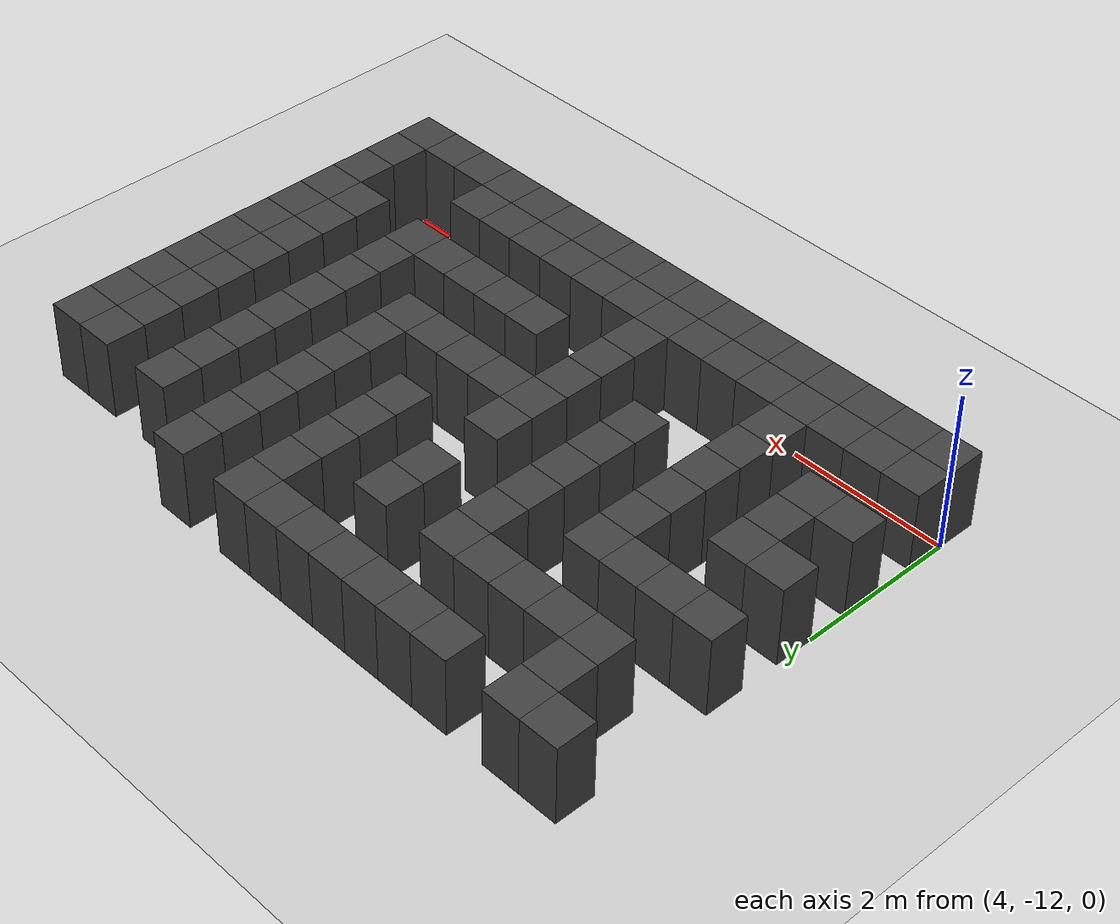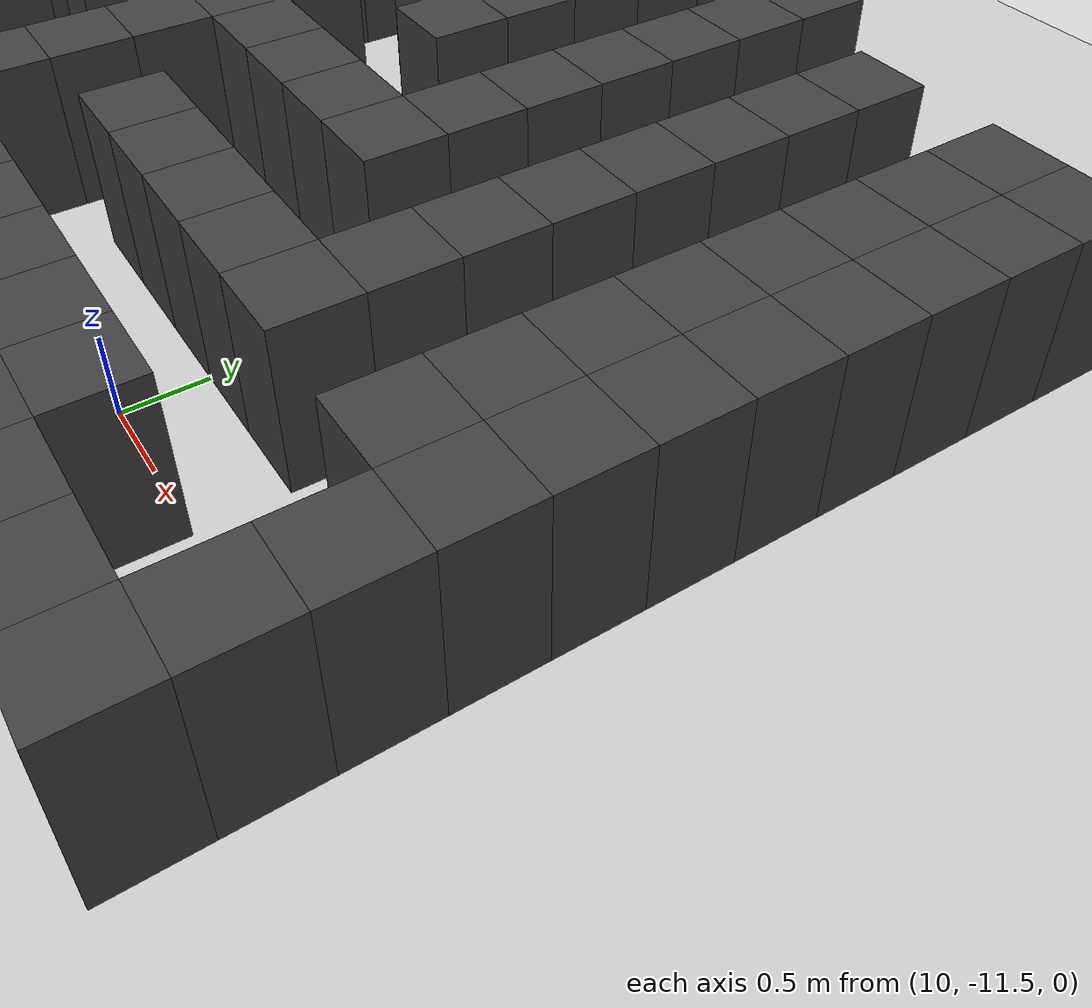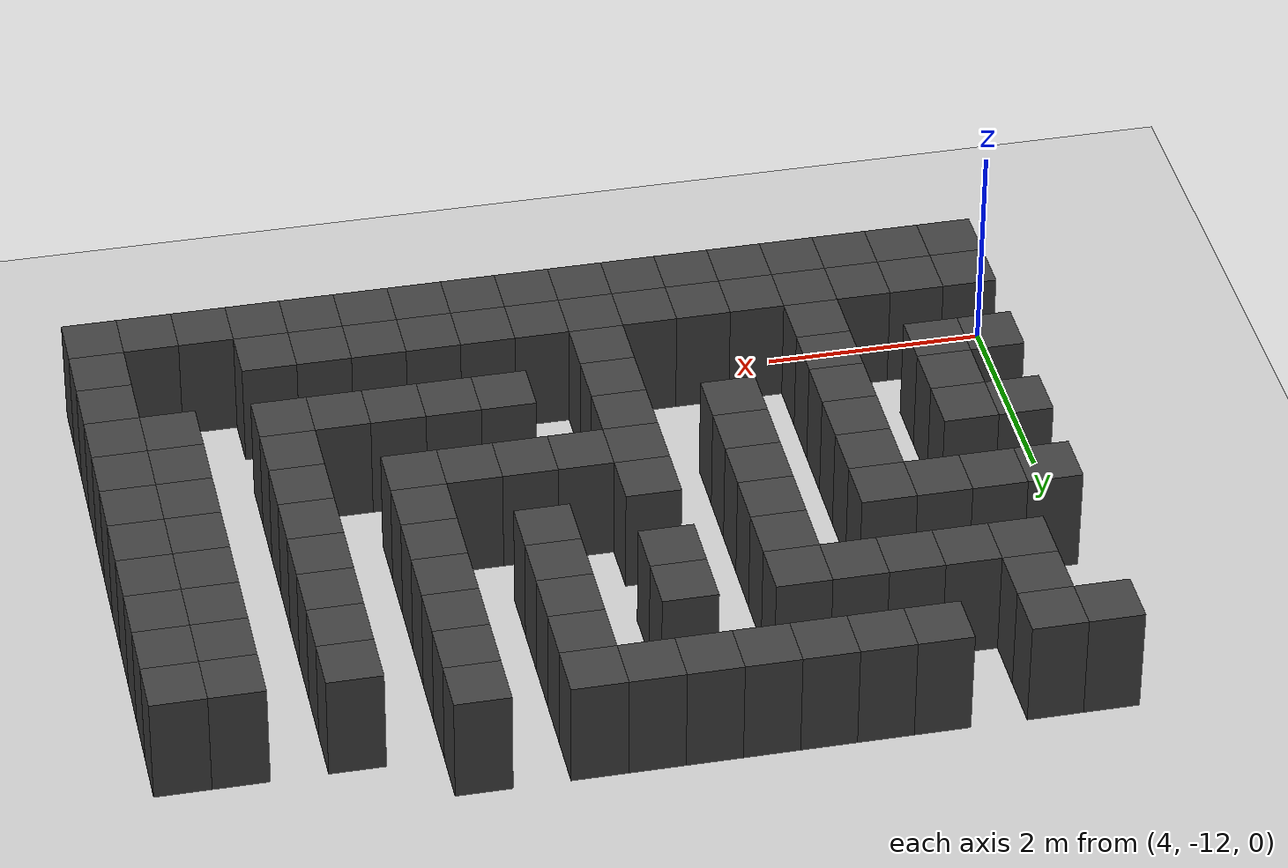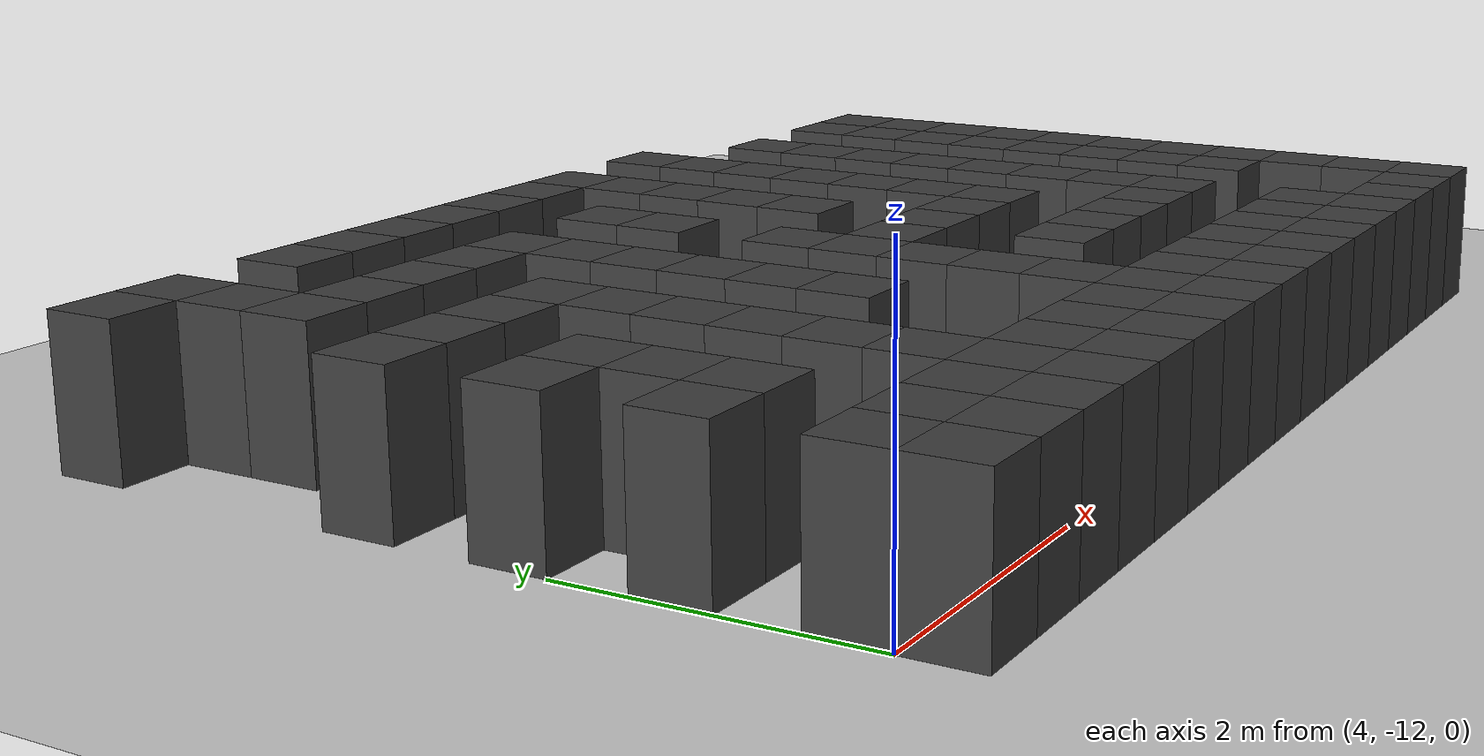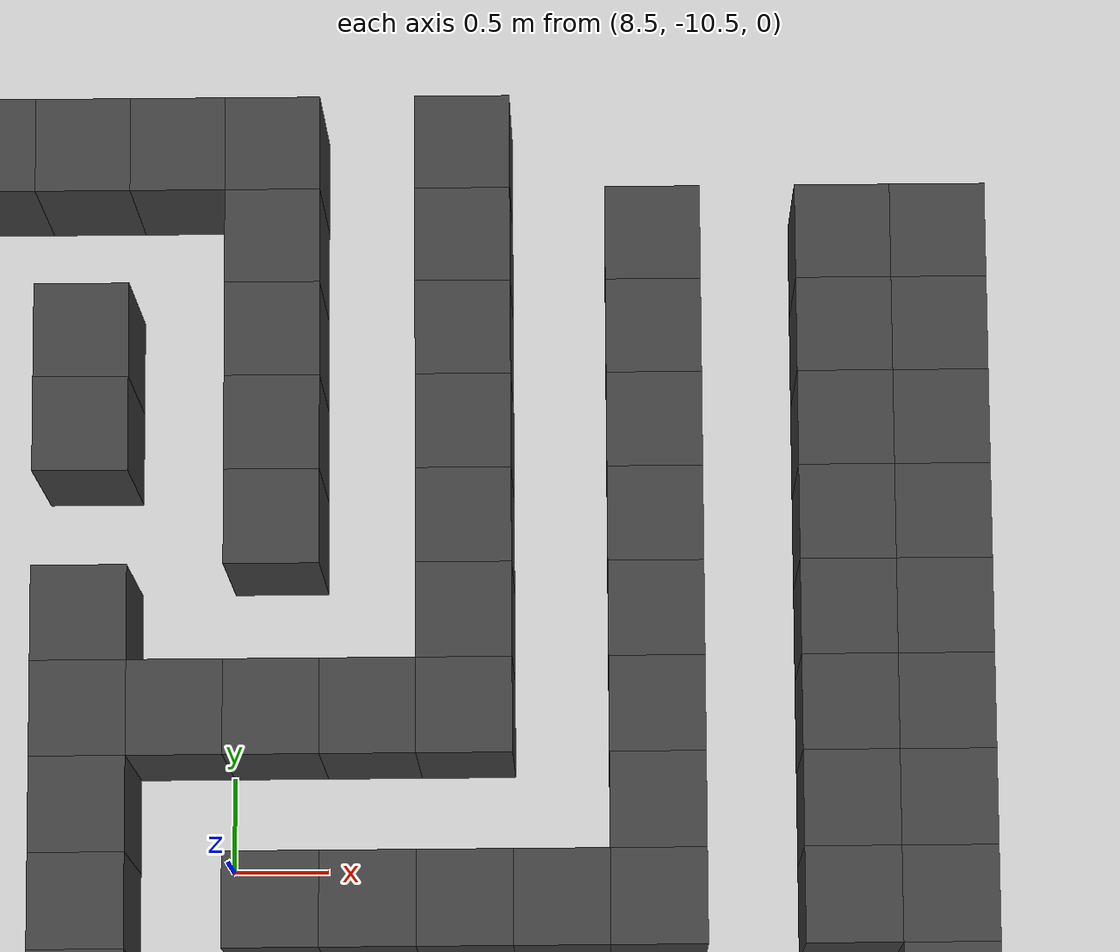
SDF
<sdf version="1.7">
 <world name="map_18228">
  <model name="ground_plane">
   <static>true</static>
   <link name="link">
    <collision name="collision">
     <geometry><plane><normal>0 0 1</normal><size>200 200</size></plane></geometry>
    </collision>
    <visual name="visual">
     <geometry><plane><normal>0 0 1</normal><size>200 200</size></plane></geometry>
     <material><ambient>0.8 0.8 0.8 1</ambient><diffuse>0.8 0.8 0.8 1</diffuse></material>
    </visual>
   </link>
  </model>
  <model name="maze_environment">
   <static>true</static>
   <link name="wall_970">
    <pose>4.250 -6.750 0.500 0 0 0</pose>
    <collision name="col"><geometry><box><size>0.5 0.5 1.0</size></box></geometry></collision>
    <visual name="vis">
     <geometry><box><size>0.5 0.5 1.0</size></box></geometry>
     <material><ambient>0.15 0.15 0.15 1</ambient><diffuse>0.25 0.25 0.25 1</diffuse></material>
    </visual>
   </link>
   <link name="wall_971">
    <pose>4.750 -6.750 0.500 0 0 0</pose>
    <collision name="col"><geometry><box><size>0.5 0.5 1.0</size></box></geometry></collision>
    <visual name="vis">
     <geometry><box><size>0.5 0.5 1.0</size></box></geometry>
     <material><ambient>0.15 0.15 0.15 1</ambient><diffuse>0.25 0.25 0.25 1</diffuse></material>
    </visual>
   </link>
   <link name="wall_972">
    <pose>5.750 -6.750 0.500 0 0 0</pose>
    <collision name="col"><geometry><box><size>0.5 0.5 1.0</size></box></geometry></collision>
    <visual name="vis">
     <geometry><box><size>0.5 0.5 1.0</size></box></geometry>
     <material><ambient>0.15 0.15 0.15 1</ambient><diffuse>0.25 0.25 0.25 1</diffuse></material>
    </visual>
   </link>
   <link name="wall_973">
    <pose>6.250 -6.750 0.500 0 0 0</pose>
    <collision name="col"><geometry><box><size>0.5 0.5 1.0</size></box></geometry></collision>
    <visual name="vis">
     <geometry><box><size>0.5 0.5 1.0</size></box></geometry>
     <material><ambient>0.15 0.15 0.15 1</ambient><diffuse>0.25 0.25 0.25 1</diffuse></material>
    </visual>
   </link>
   <link name="wall_974">
    <pose>6.750 -6.750 0.500 0 0 0</pose>
    <collision name="col"><geometry><box><size>0.5 0.5 1.0</size></box></geometry></collision>
    <visual name="vis">
     <geometry><box><size>0.5 0.5 1.0</size></box></geometry>
     <material><ambient>0.15 0.15 0.15 1</ambient><diffuse>0.25 0.25 0.25 1</diffuse></material>
    </visual>
   </link>
   <link name="wall_975">
    <pose>7.250 -6.750 0.500 0 0 0</pose>
    <collision name="col"><geometry><box><size>0.5 0.5 1.0</size></box></geometry></collision>
    <visual name="vis">
     <geometry><box><size>0.5 0.5 1.0</size></box></geometry>
     <material><ambient>0.15 0.15 0.15 1</ambient><diffuse>0.25 0.25 0.25 1</diffuse></material>
    </visual>
   </link>
   <link name="wall_976">
    <pose>7.750 -6.750 0.500 0 0 0</pose>
    <collision name="col"><geometry><box><size>0.5 0.5 1.0</size></box></geometry></collision>
    <visual name="vis">
     <geometry><box><size>0.5 0.5 1.0</size></box></geometry>
     <material><ambient>0.15 0.15 0.15 1</ambient><diffuse>0.25 0.25 0.25 1</diffuse></material>
    </visual>
   </link>
   <link name="wall_977">
    <pose>8.250 -6.750 0.500 0 0 0</pose>
    <collision name="col"><geometry><box><size>0.5 0.5 1.0</size></box></geometry></collision>
    <visual name="vis">
     <geometry><box><size>0.5 0.5 1.0</size></box></geometry>
     <material><ambient>0.15 0.15 0.15 1</ambient><diffuse>0.25 0.25 0.25 1</diffuse></material>
    </visual>
   </link>
   <link name="wall_978">
    <pose>8.750 -6.750 0.500 0 0 0</pose>
    <collision name="col"><geometry><box><size>0.5 0.5 1.0</size></box></geometry></collision>
    <visual name="vis">
     <geometry><box><size>0.5 0.5 1.0</size></box></geometry>
     <material><ambient>0.15 0.15 0.15 1</ambient><diffuse>0.25 0.25 0.25 1</diffuse></material>
    </visual>
   </link>
   <link name="wall_979">
    <pose>9.750 -6.750 0.500 0 0 0</pose>
    <collision name="col"><geometry><box><size>0.5 0.5 1.0</size></box></geometry></collision>
    <visual name="vis">
     <geometry><box><size>0.5 0.5 1.0</size></box></geometry>
     <material><ambient>0.15 0.15 0.15 1</ambient><diffuse>0.25 0.25 0.25 1</diffuse></material>
    </visual>
   </link>
   <link name="wall_990">
    <pose>4.750 -7.250 0.500 0 0 0</pose>
    <collision name="col"><geometry><box><size>0.5 0.5 1.0</size></box></geometry></collision>
    <visual name="vis">
     <geometry><box><size>0.5 0.5 1.0</size></box></geometry>
     <material><ambient>0.15 0.15 0.15 1</ambient><diffuse>0.25 0.25 0.25 1</diffuse></material>
    </visual>
   </link>
   <link name="wall_991">
    <pose>8.750 -7.250 0.500 0 0 0</pose>
    <collision name="col"><geometry><box><size>0.5 0.5 1.0</size></box></geometry></collision>
    <visual name="vis">
     <geometry><box><size>0.5 0.5 1.0</size></box></geometry>
     <material><ambient>0.15 0.15 0.15 1</ambient><diffuse>0.25 0.25 0.25 1</diffuse></material>
    </visual>
   </link>
   <link name="wall_992">
    <pose>9.750 -7.250 0.500 0 0 0</pose>
    <collision name="col"><geometry><box><size>0.5 0.5 1.0</size></box></geometry></collision>
    <visual name="vis">
     <geometry><box><size>0.5 0.5 1.0</size></box></geometry>
     <material><ambient>0.15 0.15 0.15 1</ambient><diffuse>0.25 0.25 0.25 1</diffuse></material>
    </visual>
   </link>
   <link name="wall_993">
    <pose>10.750 -7.250 0.500 0 0 0</pose>
    <collision name="col"><geometry><box><size>0.5 0.5 1.0</size></box></geometry></collision>
    <visual name="vis">
     <geometry><box><size>0.5 0.5 1.0</size></box></geometry>
     <material><ambient>0.15 0.15 0.15 1</ambient><diffuse>0.25 0.25 0.25 1</diffuse></material>
    </visual>
   </link>
   <link name="wall_994">
    <pose>11.750 -7.250 0.500 0 0 0</pose>
    <collision name="col"><geometry><box><size>0.5 0.5 1.0</size></box></geometry></collision>
    <visual name="vis">
     <geometry><box><size>0.5 0.5 1.0</size></box></geometry>
     <material><ambient>0.15 0.15 0.15 1</ambient><diffuse>0.25 0.25 0.25 1</diffuse></material>
    </visual>
   </link>
   <link name="wall_995">
    <pose>12.250 -7.250 0.500 0 0 0</pose>
    <collision name="col"><geometry><box><size>0.5 0.5 1.0</size></box></geometry></collision>
    <visual name="vis">
     <geometry><box><size>0.5 0.5 1.0</size></box></geometry>
     <material><ambient>0.15 0.15 0.15 1</ambient><diffuse>0.25 0.25 0.25 1</diffuse></material>
    </visual>
   </link>
   <link name="wall_1023">
    <pose>4.750 -7.750 0.500 0 0 0</pose>
    <collision name="col"><geometry><box><size>0.5 0.5 1.0</size></box></geometry></collision>
    <visual name="vis">
     <geometry><box><size>0.5 0.5 1.0</size></box></geometry>
     <material><ambient>0.15 0.15 0.15 1</ambient><diffuse>0.25 0.25 0.25 1</diffuse></material>
    </visual>
   </link>
   <link name="wall_1024">
    <pose>5.250 -7.750 0.500 0 0 0</pose>
    <collision name="col"><geometry><box><size>0.5 0.5 1.0</size></box></geometry></collision>
    <visual name="vis">
     <geometry><box><size>0.5 0.5 1.0</size></box></geometry>
     <material><ambient>0.15 0.15 0.15 1</ambient><diffuse>0.25 0.25 0.25 1</diffuse></material>
    </visual>
   </link>
   <link name="wall_1025">
    <pose>5.750 -7.750 0.500 0 0 0</pose>
    <collision name="col"><geometry><box><size>0.5 0.5 1.0</size></box></geometry></collision>
    <visual name="vis">
     <geometry><box><size>0.5 0.5 1.0</size></box></geometry>
     <material><ambient>0.15 0.15 0.15 1</ambient><diffuse>0.25 0.25 0.25 1</diffuse></material>
    </visual>
   </link>
   <link name="wall_1026">
    <pose>6.250 -7.750 0.500 0 0 0</pose>
    <collision name="col"><geometry><box><size>0.5 0.5 1.0</size></box></geometry></collision>
    <visual name="vis">
     <geometry><box><size>0.5 0.5 1.0</size></box></geometry>
     <material><ambient>0.15 0.15 0.15 1</ambient><diffuse>0.25 0.25 0.25 1</diffuse></material>
    </visual>
   </link>
   <link name="wall_1027">
    <pose>6.750 -7.750 0.500 0 0 0</pose>
    <collision name="col"><geometry><box><size>0.5 0.5 1.0</size></box></geometry></collision>
    <visual name="vis">
     <geometry><box><size>0.5 0.5 1.0</size></box></geometry>
     <material><ambient>0.15 0.15 0.15 1</ambient><diffuse>0.25 0.25 0.25 1</diffuse></material>
    </visual>
   </link>
   <link name="wall_1028">
    <pose>7.750 -7.750 0.500 0 0 0</pose>
    <collision name="col"><geometry><box><size>0.5 0.5 1.0</size></box></geometry></collision>
    <visual name="vis">
     <geometry><box><size>0.5 0.5 1.0</size></box></geometry>
     <material><ambient>0.15 0.15 0.15 1</ambient><diffuse>0.25 0.25 0.25 1</diffuse></material>
    </visual>
   </link>
   <link name="wall_1029">
    <pose>8.750 -7.750 0.500 0 0 0</pose>
    <collision name="col"><geometry><box><size>0.5 0.5 1.0</size></box></geometry></collision>
    <visual name="vis">
     <geometry><box><size>0.5 0.5 1.0</size></box></geometry>
     <material><ambient>0.15 0.15 0.15 1</ambient><diffuse>0.25 0.25 0.25 1</diffuse></material>
    </visual>
   </link>
   <link name="wall_1030">
    <pose>9.750 -7.750 0.500 0 0 0</pose>
    <collision name="col"><geometry><box><size>0.5 0.5 1.0</size></box></geometry></collision>
    <visual name="vis">
     <geometry><box><size>0.5 0.5 1.0</size></box></geometry>
     <material><ambient>0.15 0.15 0.15 1</ambient><diffuse>0.25 0.25 0.25 1</diffuse></material>
    </visual>
   </link>
   <link name="wall_1031">
    <pose>10.750 -7.750 0.500 0 0 0</pose>
    <collision name="col"><geometry><box><size>0.5 0.5 1.0</size></box></geometry></collision>
    <visual name="vis">
     <geometry><box><size>0.5 0.5 1.0</size></box></geometry>
     <material><ambient>0.15 0.15 0.15 1</ambient><diffuse>0.25 0.25 0.25 1</diffuse></material>
    </visual>
   </link>
   <link name="wall_1032">
    <pose>11.750 -7.750 0.500 0 0 0</pose>
    <collision name="col"><geometry><box><size>0.5 0.5 1.0</size></box></geometry></collision>
    <visual name="vis">
     <geometry><box><size>0.5 0.5 1.0</size></box></geometry>
     <material><ambient>0.15 0.15 0.15 1</ambient><diffuse>0.25 0.25 0.25 1</diffuse></material>
    </visual>
   </link>
   <link name="wall_1033">
    <pose>12.250 -7.750 0.500 0 0 0</pose>
    <collision name="col"><geometry><box><size>0.5 0.5 1.0</size></box></geometry></collision>
    <visual name="vis">
     <geometry><box><size>0.5 0.5 1.0</size></box></geometry>
     <material><ambient>0.15 0.15 0.15 1</ambient><diffuse>0.25 0.25 0.25 1</diffuse></material>
    </visual>
   </link>
   <link name="wall_1042">
    <pose>6.750 -8.250 0.500 0 0 0</pose>
    <collision name="col"><geometry><box><size>0.5 0.5 1.0</size></box></geometry></collision>
    <visual name="vis">
     <geometry><box><size>0.5 0.5 1.0</size></box></geometry>
     <material><ambient>0.15 0.15 0.15 1</ambient><diffuse>0.25 0.25 0.25 1</diffuse></material>
    </visual>
   </link>
   <link name="wall_1043">
    <pose>7.750 -8.250 0.500 0 0 0</pose>
    <collision name="col"><geometry><box><size>0.5 0.5 1.0</size></box></geometry></collision>
    <visual name="vis">
     <geometry><box><size>0.5 0.5 1.0</size></box></geometry>
     <material><ambient>0.15 0.15 0.15 1</ambient><diffuse>0.25 0.25 0.25 1</diffuse></material>
    </visual>
   </link>
   <link name="wall_1044">
    <pose>8.750 -8.250 0.500 0 0 0</pose>
    <collision name="col"><geometry><box><size>0.5 0.5 1.0</size></box></geometry></collision>
    <visual name="vis">
     <geometry><box><size>0.5 0.5 1.0</size></box></geometry>
     <material><ambient>0.15 0.15 0.15 1</ambient><diffuse>0.25 0.25 0.25 1</diffuse></material>
    </visual>
   </link>
   <link name="wall_1045">
    <pose>9.750 -8.250 0.500 0 0 0</pose>
    <collision name="col"><geometry><box><size>0.5 0.5 1.0</size></box></geometry></collision>
    <visual name="vis">
     <geometry><box><size>0.5 0.5 1.0</size></box></geometry>
     <material><ambient>0.15 0.15 0.15 1</ambient><diffuse>0.25 0.25 0.25 1</diffuse></material>
    </visual>
   </link>
   <link name="wall_1046">
    <pose>10.750 -8.250 0.500 0 0 0</pose>
    <collision name="col"><geometry><box><size>0.5 0.5 1.0</size></box></geometry></collision>
    <visual name="vis">
     <geometry><box><size>0.5 0.5 1.0</size></box></geometry>
     <material><ambient>0.15 0.15 0.15 1</ambient><diffuse>0.25 0.25 0.25 1</diffuse></material>
    </visual>
   </link>
   <link name="wall_1047">
    <pose>11.750 -8.250 0.500 0 0 0</pose>
    <collision name="col"><geometry><box><size>0.5 0.5 1.0</size></box></geometry></collision>
    <visual name="vis">
     <geometry><box><size>0.5 0.5 1.0</size></box></geometry>
     <material><ambient>0.15 0.15 0.15 1</ambient><diffuse>0.25 0.25 0.25 1</diffuse></material>
    </visual>
   </link>
   <link name="wall_1048">
    <pose>12.250 -8.250 0.500 0 0 0</pose>
    <collision name="col"><geometry><box><size>0.5 0.5 1.0</size></box></geometry></collision>
    <visual name="vis">
     <geometry><box><size>0.5 0.5 1.0</size></box></geometry>
     <material><ambient>0.15 0.15 0.15 1</ambient><diffuse>0.25 0.25 0.25 1</diffuse></material>
    </visual>
   </link>
   <link name="wall_1072">
    <pose>4.250 -8.750 0.500 0 0 0</pose>
    <collision name="col"><geometry><box><size>0.5 0.5 1.0</size></box></geometry></collision>
    <visual name="vis">
     <geometry><box><size>0.5 0.5 1.0</size></box></geometry>
     <material><ambient>0.15 0.15 0.15 1</ambient><diffuse>0.25 0.25 0.25 1</diffuse></material>
    </visual>
   </link>
   <link name="wall_1073">
    <pose>4.750 -8.750 0.500 0 0 0</pose>
    <collision name="col"><geometry><box><size>0.5 0.5 1.0</size></box></geometry></collision>
    <visual name="vis">
     <geometry><box><size>0.5 0.5 1.0</size></box></geometry>
     <material><ambient>0.15 0.15 0.15 1</ambient><diffuse>0.25 0.25 0.25 1</diffuse></material>
    </visual>
   </link>
   <link name="wall_1074">
    <pose>5.250 -8.750 0.500 0 0 0</pose>
    <collision name="col"><geometry><box><size>0.5 0.5 1.0</size></box></geometry></collision>
    <visual name="vis">
     <geometry><box><size>0.5 0.5 1.0</size></box></geometry>
     <material><ambient>0.15 0.15 0.15 1</ambient><diffuse>0.25 0.25 0.25 1</diffuse></material>
    </visual>
   </link>
   <link name="wall_1075">
    <pose>5.750 -8.750 0.500 0 0 0</pose>
    <collision name="col"><geometry><box><size>0.5 0.5 1.0</size></box></geometry></collision>
    <visual name="vis">
     <geometry><box><size>0.5 0.5 1.0</size></box></geometry>
     <material><ambient>0.15 0.15 0.15 1</ambient><diffuse>0.25 0.25 0.25 1</diffuse></material>
    </visual>
   </link>
   <link name="wall_1076">
    <pose>6.750 -8.750 0.500 0 0 0</pose>
    <collision name="col"><geometry><box><size>0.5 0.5 1.0</size></box></geometry></collision>
    <visual name="vis">
     <geometry><box><size>0.5 0.5 1.0</size></box></geometry>
     <material><ambient>0.15 0.15 0.15 1</ambient><diffuse>0.25 0.25 0.25 1</diffuse></material>
    </visual>
   </link>
   <link name="wall_1077">
    <pose>8.750 -8.750 0.500 0 0 0</pose>
    <collision name="col"><geometry><box><size>0.5 0.5 1.0</size></box></geometry></collision>
    <visual name="vis">
     <geometry><box><size>0.5 0.5 1.0</size></box></geometry>
     <material><ambient>0.15 0.15 0.15 1</ambient><diffuse>0.25 0.25 0.25 1</diffuse></material>
    </visual>
   </link>
   <link name="wall_1078">
    <pose>9.750 -8.750 0.500 0 0 0</pose>
    <collision name="col"><geometry><box><size>0.5 0.5 1.0</size></box></geometry></collision>
    <visual name="vis">
     <geometry><box><size>0.5 0.5 1.0</size></box></geometry>
     <material><ambient>0.15 0.15 0.15 1</ambient><diffuse>0.25 0.25 0.25 1</diffuse></material>
    </visual>
   </link>
   <link name="wall_1079">
    <pose>10.750 -8.750 0.500 0 0 0</pose>
    <collision name="col"><geometry><box><size>0.5 0.5 1.0</size></box></geometry></collision>
    <visual name="vis">
     <geometry><box><size>0.5 0.5 1.0</size></box></geometry>
     <material><ambient>0.15 0.15 0.15 1</ambient><diffuse>0.25 0.25 0.25 1</diffuse></material>
    </visual>
   </link>
   <link name="wall_1080">
    <pose>11.750 -8.750 0.500 0 0 0</pose>
    <collision name="col"><geometry><box><size>0.5 0.5 1.0</size></box></geometry></collision>
    <visual name="vis">
     <geometry><box><size>0.5 0.5 1.0</size></box></geometry>
     <material><ambient>0.15 0.15 0.15 1</ambient><diffuse>0.25 0.25 0.25 1</diffuse></material>
    </visual>
   </link>
   <link name="wall_1081">
    <pose>12.250 -8.750 0.500 0 0 0</pose>
    <collision name="col"><geometry><box><size>0.5 0.5 1.0</size></box></geometry></collision>
    <visual name="vis">
     <geometry><box><size>0.5 0.5 1.0</size></box></geometry>
     <material><ambient>0.15 0.15 0.15 1</ambient><diffuse>0.25 0.25 0.25 1</diffuse></material>
    </visual>
   </link>
   <link name="wall_1092">
    <pose>5.750 -9.250 0.500 0 0 0</pose>
    <collision name="col"><geometry><box><size>0.5 0.5 1.0</size></box></geometry></collision>
    <visual name="vis">
     <geometry><box><size>0.5 0.5 1.0</size></box></geometry>
     <material><ambient>0.15 0.15 0.15 1</ambient><diffuse>0.25 0.25 0.25 1</diffuse></material>
    </visual>
   </link>
   <link name="wall_1093">
    <pose>6.750 -9.250 0.500 0 0 0</pose>
    <collision name="col"><geometry><box><size>0.5 0.5 1.0</size></box></geometry></collision>
    <visual name="vis">
     <geometry><box><size>0.5 0.5 1.0</size></box></geometry>
     <material><ambient>0.15 0.15 0.15 1</ambient><diffuse>0.25 0.25 0.25 1</diffuse></material>
    </visual>
   </link>
   <link name="wall_1094">
    <pose>7.750 -9.250 0.500 0 0 0</pose>
    <collision name="col"><geometry><box><size>0.5 0.5 1.0</size></box></geometry></collision>
    <visual name="vis">
     <geometry><box><size>0.5 0.5 1.0</size></box></geometry>
     <material><ambient>0.15 0.15 0.15 1</ambient><diffuse>0.25 0.25 0.25 1</diffuse></material>
    </visual>
   </link>
   <link name="wall_1095">
    <pose>9.750 -9.250 0.500 0 0 0</pose>
    <collision name="col"><geometry><box><size>0.5 0.5 1.0</size></box></geometry></collision>
    <visual name="vis">
     <geometry><box><size>0.5 0.5 1.0</size></box></geometry>
     <material><ambient>0.15 0.15 0.15 1</ambient><diffuse>0.25 0.25 0.25 1</diffuse></material>
    </visual>
   </link>
   <link name="wall_1096">
    <pose>10.750 -9.250 0.500 0 0 0</pose>
    <collision name="col"><geometry><box><size>0.5 0.5 1.0</size></box></geometry></collision>
    <visual name="vis">
     <geometry><box><size>0.5 0.5 1.0</size></box></geometry>
     <material><ambient>0.15 0.15 0.15 1</ambient><diffuse>0.25 0.25 0.25 1</diffuse></material>
    </visual>
   </link>
   <link name="wall_1097">
    <pose>11.750 -9.250 0.500 0 0 0</pose>
    <collision name="col"><geometry><box><size>0.5 0.5 1.0</size></box></geometry></collision>
    <visual name="vis">
     <geometry><box><size>0.5 0.5 1.0</size></box></geometry>
     <material><ambient>0.15 0.15 0.15 1</ambient><diffuse>0.25 0.25 0.25 1</diffuse></material>
    </visual>
   </link>
   <link name="wall_1098">
    <pose>12.250 -9.250 0.500 0 0 0</pose>
    <collision name="col"><geometry><box><size>0.5 0.5 1.0</size></box></geometry></collision>
    <visual name="vis">
     <geometry><box><size>0.5 0.5 1.0</size></box></geometry>
     <material><ambient>0.15 0.15 0.15 1</ambient><diffuse>0.25 0.25 0.25 1</diffuse></material>
    </visual>
   </link>
   <link name="wall_1121">
    <pose>4.250 -9.750 0.500 0 0 0</pose>
    <collision name="col"><geometry><box><size>0.5 0.5 1.0</size></box></geometry></collision>
    <visual name="vis">
     <geometry><box><size>0.5 0.5 1.0</size></box></geometry>
     <material><ambient>0.15 0.15 0.15 1</ambient><diffuse>0.25 0.25 0.25 1</diffuse></material>
    </visual>
   </link>
   <link name="wall_1122">
    <pose>4.750 -9.750 0.500 0 0 0</pose>
    <collision name="col"><geometry><box><size>0.5 0.5 1.0</size></box></geometry></collision>
    <visual name="vis">
     <geometry><box><size>0.5 0.5 1.0</size></box></geometry>
     <material><ambient>0.15 0.15 0.15 1</ambient><diffuse>0.25 0.25 0.25 1</diffuse></material>
    </visual>
   </link>
   <link name="wall_1123">
    <pose>5.750 -9.750 0.500 0 0 0</pose>
    <collision name="col"><geometry><box><size>0.5 0.5 1.0</size></box></geometry></collision>
    <visual name="vis">
     <geometry><box><size>0.5 0.5 1.0</size></box></geometry>
     <material><ambient>0.15 0.15 0.15 1</ambient><diffuse>0.25 0.25 0.25 1</diffuse></material>
    </visual>
   </link>
   <link name="wall_1124">
    <pose>6.750 -9.750 0.500 0 0 0</pose>
    <collision name="col"><geometry><box><size>0.5 0.5 1.0</size></box></geometry></collision>
    <visual name="vis">
     <geometry><box><size>0.5 0.5 1.0</size></box></geometry>
     <material><ambient>0.15 0.15 0.15 1</ambient><diffuse>0.25 0.25 0.25 1</diffuse></material>
    </visual>
   </link>
   <link name="wall_1125">
    <pose>7.750 -9.750 0.500 0 0 0</pose>
    <collision name="col"><geometry><box><size>0.5 0.5 1.0</size></box></geometry></collision>
    <visual name="vis">
     <geometry><box><size>0.5 0.5 1.0</size></box></geometry>
     <material><ambient>0.15 0.15 0.15 1</ambient><diffuse>0.25 0.25 0.25 1</diffuse></material>
    </visual>
   </link>
   <link name="wall_1126">
    <pose>8.250 -9.750 0.500 0 0 0</pose>
    <collision name="col"><geometry><box><size>0.5 0.5 1.0</size></box></geometry></collision>
    <visual name="vis">
     <geometry><box><size>0.5 0.5 1.0</size></box></geometry>
     <material><ambient>0.15 0.15 0.15 1</ambient><diffuse>0.25 0.25 0.25 1</diffuse></material>
    </visual>
   </link>
   <link name="wall_1127">
    <pose>8.750 -9.750 0.500 0 0 0</pose>
    <collision name="col"><geometry><box><size>0.5 0.5 1.0</size></box></geometry></collision>
    <visual name="vis">
     <geometry><box><size>0.5 0.5 1.0</size></box></geometry>
     <material><ambient>0.15 0.15 0.15 1</ambient><diffuse>0.25 0.25 0.25 1</diffuse></material>
    </visual>
   </link>
   <link name="wall_1128">
    <pose>9.250 -9.750 0.500 0 0 0</pose>
    <collision name="col"><geometry><box><size>0.5 0.5 1.0</size></box></geometry></collision>
    <visual name="vis">
     <geometry><box><size>0.5 0.5 1.0</size></box></geometry>
     <material><ambient>0.15 0.15 0.15 1</ambient><diffuse>0.25 0.25 0.25 1</diffuse></material>
    </visual>
   </link>
   <link name="wall_1129">
    <pose>9.750 -9.750 0.500 0 0 0</pose>
    <collision name="col"><geometry><box><size>0.5 0.5 1.0</size></box></geometry></collision>
    <visual name="vis">
     <geometry><box><size>0.5 0.5 1.0</size></box></geometry>
     <material><ambient>0.15 0.15 0.15 1</ambient><diffuse>0.25 0.25 0.25 1</diffuse></material>
    </visual>
   </link>
   <link name="wall_1130">
    <pose>10.750 -9.750 0.500 0 0 0</pose>
    <collision name="col"><geometry><box><size>0.5 0.5 1.0</size></box></geometry></collision>
    <visual name="vis">
     <geometry><box><size>0.5 0.5 1.0</size></box></geometry>
     <material><ambient>0.15 0.15 0.15 1</ambient><diffuse>0.25 0.25 0.25 1</diffuse></material>
    </visual>
   </link>
   <link name="wall_1131">
    <pose>11.750 -9.750 0.500 0 0 0</pose>
    <collision name="col"><geometry><box><size>0.5 0.5 1.0</size></box></geometry></collision>
    <visual name="vis">
     <geometry><box><size>0.5 0.5 1.0</size></box></geometry>
     <material><ambient>0.15 0.15 0.15 1</ambient><diffuse>0.25 0.25 0.25 1</diffuse></material>
    </visual>
   </link>
   <link name="wall_1132">
    <pose>12.250 -9.750 0.500 0 0 0</pose>
    <collision name="col"><geometry><box><size>0.5 0.5 1.0</size></box></geometry></collision>
    <visual name="vis">
     <geometry><box><size>0.5 0.5 1.0</size></box></geometry>
     <material><ambient>0.15 0.15 0.15 1</ambient><diffuse>0.25 0.25 0.25 1</diffuse></material>
    </visual>
   </link>
   <link name="wall_1141">
    <pose>4.750 -10.250 0.500 0 0 0</pose>
    <collision name="col"><geometry><box><size>0.5 0.5 1.0</size></box></geometry></collision>
    <visual name="vis">
     <geometry><box><size>0.5 0.5 1.0</size></box></geometry>
     <material><ambient>0.15 0.15 0.15 1</ambient><diffuse>0.25 0.25 0.25 1</diffuse></material>
    </visual>
   </link>
   <link name="wall_1142">
    <pose>5.750 -10.250 0.500 0 0 0</pose>
    <collision name="col"><geometry><box><size>0.5 0.5 1.0</size></box></geometry></collision>
    <visual name="vis">
     <geometry><box><size>0.5 0.5 1.0</size></box></geometry>
     <material><ambient>0.15 0.15 0.15 1</ambient><diffuse>0.25 0.25 0.25 1</diffuse></material>
    </visual>
   </link>
   <link name="wall_1143">
    <pose>6.750 -10.250 0.500 0 0 0</pose>
    <collision name="col"><geometry><box><size>0.5 0.5 1.0</size></box></geometry></collision>
    <visual name="vis">
     <geometry><box><size>0.5 0.5 1.0</size></box></geometry>
     <material><ambient>0.15 0.15 0.15 1</ambient><diffuse>0.25 0.25 0.25 1</diffuse></material>
    </visual>
   </link>
   <link name="wall_1144">
    <pose>7.750 -10.250 0.500 0 0 0</pose>
    <collision name="col"><geometry><box><size>0.5 0.5 1.0</size></box></geometry></collision>
    <visual name="vis">
     <geometry><box><size>0.5 0.5 1.0</size></box></geometry>
     <material><ambient>0.15 0.15 0.15 1</ambient><diffuse>0.25 0.25 0.25 1</diffuse></material>
    </visual>
   </link>
   <link name="wall_1145">
    <pose>10.750 -10.250 0.500 0 0 0</pose>
    <collision name="col"><geometry><box><size>0.5 0.5 1.0</size></box></geometry></collision>
    <visual name="vis">
     <geometry><box><size>0.5 0.5 1.0</size></box></geometry>
     <material><ambient>0.15 0.15 0.15 1</ambient><diffuse>0.25 0.25 0.25 1</diffuse></material>
    </visual>
   </link>
   <link name="wall_1146">
    <pose>11.750 -10.250 0.500 0 0 0</pose>
    <collision name="col"><geometry><box><size>0.5 0.5 1.0</size></box></geometry></collision>
    <visual name="vis">
     <geometry><box><size>0.5 0.5 1.0</size></box></geometry>
     <material><ambient>0.15 0.15 0.15 1</ambient><diffuse>0.25 0.25 0.25 1</diffuse></material>
    </visual>
   </link>
   <link name="wall_1147">
    <pose>12.250 -10.250 0.500 0 0 0</pose>
    <collision name="col"><geometry><box><size>0.5 0.5 1.0</size></box></geometry></collision>
    <visual name="vis">
     <geometry><box><size>0.5 0.5 1.0</size></box></geometry>
     <material><ambient>0.15 0.15 0.15 1</ambient><diffuse>0.25 0.25 0.25 1</diffuse></material>
    </visual>
   </link>
   <link name="wall_1174">
    <pose>4.250 -10.750 0.500 0 0 0</pose>
    <collision name="col"><geometry><box><size>0.5 0.5 1.0</size></box></geometry></collision>
    <visual name="vis">
     <geometry><box><size>0.5 0.5 1.0</size></box></geometry>
     <material><ambient>0.15 0.15 0.15 1</ambient><diffuse>0.25 0.25 0.25 1</diffuse></material>
    </visual>
   </link>
   <link name="wall_1175">
    <pose>4.750 -10.750 0.500 0 0 0</pose>
    <collision name="col"><geometry><box><size>0.5 0.5 1.0</size></box></geometry></collision>
    <visual name="vis">
     <geometry><box><size>0.5 0.5 1.0</size></box></geometry>
     <material><ambient>0.15 0.15 0.15 1</ambient><diffuse>0.25 0.25 0.25 1</diffuse></material>
    </visual>
   </link>
   <link name="wall_1176">
    <pose>5.750 -10.750 0.500 0 0 0</pose>
    <collision name="col"><geometry><box><size>0.5 0.5 1.0</size></box></geometry></collision>
    <visual name="vis">
     <geometry><box><size>0.5 0.5 1.0</size></box></geometry>
     <material><ambient>0.15 0.15 0.15 1</ambient><diffuse>0.25 0.25 0.25 1</diffuse></material>
    </visual>
   </link>
   <link name="wall_1177">
    <pose>7.750 -10.750 0.500 0 0 0</pose>
    <collision name="col"><geometry><box><size>0.5 0.5 1.0</size></box></geometry></collision>
    <visual name="vis">
     <geometry><box><size>0.5 0.5 1.0</size></box></geometry>
     <material><ambient>0.15 0.15 0.15 1</ambient><diffuse>0.25 0.25 0.25 1</diffuse></material>
    </visual>
   </link>
   <link name="wall_1178">
    <pose>8.750 -10.750 0.500 0 0 0</pose>
    <collision name="col"><geometry><box><size>0.5 0.5 1.0</size></box></geometry></collision>
    <visual name="vis">
     <geometry><box><size>0.5 0.5 1.0</size></box></geometry>
     <material><ambient>0.15 0.15 0.15 1</ambient><diffuse>0.25 0.25 0.25 1</diffuse></material>
    </visual>
   </link>
   <link name="wall_1179">
    <pose>9.250 -10.750 0.500 0 0 0</pose>
    <collision name="col"><geometry><box><size>0.5 0.5 1.0</size></box></geometry></collision>
    <visual name="vis">
     <geometry><box><size>0.5 0.5 1.0</size></box></geometry>
     <material><ambient>0.15 0.15 0.15 1</ambient><diffuse>0.25 0.25 0.25 1</diffuse></material>
    </visual>
   </link>
   <link name="wall_1180">
    <pose>9.750 -10.750 0.500 0 0 0</pose>
    <collision name="col"><geometry><box><size>0.5 0.5 1.0</size></box></geometry></collision>
    <visual name="vis">
     <geometry><box><size>0.5 0.5 1.0</size></box></geometry>
     <material><ambient>0.15 0.15 0.15 1</ambient><diffuse>0.25 0.25 0.25 1</diffuse></material>
    </visual>
   </link>
   <link name="wall_1181">
    <pose>10.250 -10.750 0.500 0 0 0</pose>
    <collision name="col"><geometry><box><size>0.5 0.5 1.0</size></box></geometry></collision>
    <visual name="vis">
     <geometry><box><size>0.5 0.5 1.0</size></box></geometry>
     <material><ambient>0.15 0.15 0.15 1</ambient><diffuse>0.25 0.25 0.25 1</diffuse></material>
    </visual>
   </link>
   <link name="wall_1182">
    <pose>10.750 -10.750 0.500 0 0 0</pose>
    <collision name="col"><geometry><box><size>0.5 0.5 1.0</size></box></geometry></collision>
    <visual name="vis">
     <geometry><box><size>0.5 0.5 1.0</size></box></geometry>
     <material><ambient>0.15 0.15 0.15 1</ambient><diffuse>0.25 0.25 0.25 1</diffuse></material>
    </visual>
   </link>
   <link name="wall_1183">
    <pose>11.750 -10.750 0.500 0 0 0</pose>
    <collision name="col"><geometry><box><size>0.5 0.5 1.0</size></box></geometry></collision>
    <visual name="vis">
     <geometry><box><size>0.5 0.5 1.0</size></box></geometry>
     <material><ambient>0.15 0.15 0.15 1</ambient><diffuse>0.25 0.25 0.25 1</diffuse></material>
    </visual>
   </link>
   <link name="wall_1184">
    <pose>12.250 -10.750 0.500 0 0 0</pose>
    <collision name="col"><geometry><box><size>0.5 0.5 1.0</size></box></geometry></collision>
    <visual name="vis">
     <geometry><box><size>0.5 0.5 1.0</size></box></geometry>
     <material><ambient>0.15 0.15 0.15 1</ambient><diffuse>0.25 0.25 0.25 1</diffuse></material>
    </visual>
   </link>
   <link name="wall_1189">
    <pose>5.750 -11.250 0.500 0 0 0</pose>
    <collision name="col"><geometry><box><size>0.5 0.5 1.0</size></box></geometry></collision>
    <visual name="vis">
     <geometry><box><size>0.5 0.5 1.0</size></box></geometry>
     <material><ambient>0.15 0.15 0.15 1</ambient><diffuse>0.25 0.25 0.25 1</diffuse></material>
    </visual>
   </link>
   <link name="wall_1190">
    <pose>7.750 -11.250 0.500 0 0 0</pose>
    <collision name="col"><geometry><box><size>0.5 0.5 1.0</size></box></geometry></collision>
    <visual name="vis">
     <geometry><box><size>0.5 0.5 1.0</size></box></geometry>
     <material><ambient>0.15 0.15 0.15 1</ambient><diffuse>0.25 0.25 0.25 1</diffuse></material>
    </visual>
   </link>
   <link name="wall_1191">
    <pose>12.250 -11.250 0.500 0 0 0</pose>
    <collision name="col"><geometry><box><size>0.5 0.5 1.0</size></box></geometry></collision>
    <visual name="vis">
     <geometry><box><size>0.5 0.5 1.0</size></box></geometry>
     <material><ambient>0.15 0.15 0.15 1</ambient><diffuse>0.25 0.25 0.25 1</diffuse></material>
    </visual>
   </link>
   <link name="wall_1225">
    <pose>4.250 -11.750 0.500 0 0 0</pose>
    <collision name="col"><geometry><box><size>0.5 0.5 1.0</size></box></geometry></collision>
    <visual name="vis">
     <geometry><box><size>0.5 0.5 1.0</size></box></geometry>
     <material><ambient>0.15 0.15 0.15 1</ambient><diffuse>0.25 0.25 0.25 1</diffuse></material>
    </visual>
   </link>
   <link name="wall_1226">
    <pose>4.750 -11.750 0.500 0 0 0</pose>
    <collision name="col"><geometry><box><size>0.5 0.5 1.0</size></box></geometry></collision>
    <visual name="vis">
     <geometry><box><size>0.5 0.5 1.0</size></box></geometry>
     <material><ambient>0.15 0.15 0.15 1</ambient><diffuse>0.25 0.25 0.25 1</diffuse></material>
    </visual>
   </link>
   <link name="wall_1227">
    <pose>5.250 -11.750 0.500 0 0 0</pose>
    <collision name="col"><geometry><box><size>0.5 0.5 1.0</size></box></geometry></collision>
    <visual name="vis">
     <geometry><box><size>0.5 0.5 1.0</size></box></geometry>
     <material><ambient>0.15 0.15 0.15 1</ambient><diffuse>0.25 0.25 0.25 1</diffuse></material>
    </visual>
   </link>
   <link name="wall_1228">
    <pose>5.750 -11.750 0.500 0 0 0</pose>
    <collision name="col"><geometry><box><size>0.5 0.5 1.0</size></box></geometry></collision>
    <visual name="vis">
     <geometry><box><size>0.5 0.5 1.0</size></box></geometry>
     <material><ambient>0.15 0.15 0.15 1</ambient><diffuse>0.25 0.25 0.25 1</diffuse></material>
    </visual>
   </link>
   <link name="wall_1229">
    <pose>6.250 -11.750 0.500 0 0 0</pose>
    <collision name="col"><geometry><box><size>0.5 0.5 1.0</size></box></geometry></collision>
    <visual name="vis">
     <geometry><box><size>0.5 0.5 1.0</size></box></geometry>
     <material><ambient>0.15 0.15 0.15 1</ambient><diffuse>0.25 0.25 0.25 1</diffuse></material>
    </visual>
   </link>
   <link name="wall_1230">
    <pose>6.750 -11.750 0.500 0 0 0</pose>
    <collision name="col"><geometry><box><size>0.5 0.5 1.0</size></box></geometry></collision>
    <visual name="vis">
     <geometry><box><size>0.5 0.5 1.0</size></box></geometry>
     <material><ambient>0.15 0.15 0.15 1</ambient><diffuse>0.25 0.25 0.25 1</diffuse></material>
    </visual>
   </link>
   <link name="wall_1231">
    <pose>7.250 -11.750 0.500 0 0 0</pose>
    <collision name="col"><geometry><box><size>0.5 0.5 1.0</size></box></geometry></collision>
    <visual name="vis">
     <geometry><box><size>0.5 0.5 1.0</size></box></geometry>
     <material><ambient>0.15 0.15 0.15 1</ambient><diffuse>0.25 0.25 0.25 1</diffuse></material>
    </visual>
   </link>
   <link name="wall_1232">
    <pose>7.750 -11.750 0.500 0 0 0</pose>
    <collision name="col"><geometry><box><size>0.5 0.5 1.0</size></box></geometry></collision>
    <visual name="vis">
     <geometry><box><size>0.5 0.5 1.0</size></box></geometry>
     <material><ambient>0.15 0.15 0.15 1</ambient><diffuse>0.25 0.25 0.25 1</diffuse></material>
    </visual>
   </link>
   <link name="wall_1233">
    <pose>8.250 -11.750 0.500 0 0 0</pose>
    <collision name="col"><geometry><box><size>0.5 0.5 1.0</size></box></geometry></collision>
    <visual name="vis">
     <geometry><box><size>0.5 0.5 1.0</size></box></geometry>
     <material><ambient>0.15 0.15 0.15 1</ambient><diffuse>0.25 0.25 0.25 1</diffuse></material>
    </visual>
   </link>
   <link name="wall_1234">
    <pose>8.750 -11.750 0.500 0 0 0</pose>
    <collision name="col"><geometry><box><size>0.5 0.5 1.0</size></box></geometry></collision>
    <visual name="vis">
     <geometry><box><size>0.5 0.5 1.0</size></box></geometry>
     <material><ambient>0.15 0.15 0.15 1</ambient><diffuse>0.25 0.25 0.25 1</diffuse></material>
    </visual>
   </link>
   <link name="wall_1235">
    <pose>9.250 -11.750 0.500 0 0 0</pose>
    <collision name="col"><geometry><box><size>0.5 0.5 1.0</size></box></geometry></collision>
    <visual name="vis">
     <geometry><box><size>0.5 0.5 1.0</size></box></geometry>
     <material><ambient>0.15 0.15 0.15 1</ambient><diffuse>0.25 0.25 0.25 1</diffuse></material>
    </visual>
   </link>
   <link name="wall_1236">
    <pose>9.750 -11.750 0.500 0 0 0</pose>
    <collision name="col"><geometry><box><size>0.5 0.5 1.0</size></box></geometry></collision>
    <visual name="vis">
     <geometry><box><size>0.5 0.5 1.0</size></box></geometry>
     <material><ambient>0.15 0.15 0.15 1</ambient><diffuse>0.25 0.25 0.25 1</diffuse></material>
    </visual>
   </link>
   <link name="wall_1237">
    <pose>10.250 -11.750 0.500 0 0 0</pose>
    <collision name="col"><geometry><box><size>0.5 0.5 1.0</size></box></geometry></collision>
    <visual name="vis">
     <geometry><box><size>0.5 0.5 1.0</size></box></geometry>
     <material><ambient>0.15 0.15 0.15 1</ambient><diffuse>0.25 0.25 0.25 1</diffuse></material>
    </visual>
   </link>
   <link name="wall_1238">
    <pose>10.750 -11.750 0.500 0 0 0</pose>
    <collision name="col"><geometry><box><size>0.5 0.5 1.0</size></box></geometry></collision>
    <visual name="vis">
     <geometry><box><size>0.5 0.5 1.0</size></box></geometry>
     <material><ambient>0.15 0.15 0.15 1</ambient><diffuse>0.25 0.25 0.25 1</diffuse></material>
    </visual>
   </link>
   <link name="wall_1239">
    <pose>12.250 -11.750 0.500 0 0 0</pose>
    <collision name="col"><geometry><box><size>0.5 0.5 1.0</size></box></geometry></collision>
    <visual name="vis">
     <geometry><box><size>0.5 0.5 1.0</size></box></geometry>
     <material><ambient>0.15 0.15 0.15 1</ambient><diffuse>0.25 0.25 0.25 1</diffuse></material>
    </visual>
   </link>
   <link name="wall_1273">
    <pose>4.250 -12.250 0.500 0 0 0</pose>
    <collision name="col"><geometry><box><size>0.5 0.5 1.0</size></box></geometry></collision>
    <visual name="vis">
     <geometry><box><size>0.5 0.5 1.0</size></box></geometry>
     <material><ambient>0.15 0.15 0.15 1</ambient><diffuse>0.25 0.25 0.25 1</diffuse></material>
    </visual>
   </link>
   <link name="wall_1274">
    <pose>4.750 -12.250 0.500 0 0 0</pose>
    <collision name="col"><geometry><box><size>0.5 0.5 1.0</size></box></geometry></collision>
    <visual name="vis">
     <geometry><box><size>0.5 0.5 1.0</size></box></geometry>
     <material><ambient>0.15 0.15 0.15 1</ambient><diffuse>0.25 0.25 0.25 1</diffuse></material>
    </visual>
   </link>
   <link name="wall_1275">
    <pose>5.250 -12.250 0.500 0 0 0</pose>
    <collision name="col"><geometry><box><size>0.5 0.5 1.0</size></box></geometry></collision>
    <visual name="vis">
     <geometry><box><size>0.5 0.5 1.0</size></box></geometry>
     <material><ambient>0.15 0.15 0.15 1</ambient><diffuse>0.25 0.25 0.25 1</diffuse></material>
    </visual>
   </link>
   <link name="wall_1276">
    <pose>5.750 -12.250 0.500 0 0 0</pose>
    <collision name="col"><geometry><box><size>0.5 0.5 1.0</size></box></geometry></collision>
    <visual name="vis">
     <geometry><box><size>0.5 0.5 1.0</size></box></geometry>
     <material><ambient>0.15 0.15 0.15 1</ambient><diffuse>0.25 0.25 0.25 1</diffuse></material>
    </visual>
   </link>
   <link name="wall_1277">
    <pose>6.250 -12.250 0.500 0 0 0</pose>
    <collision name="col"><geometry><box><size>0.5 0.5 1.0</size></box></geometry></collision>
    <visual name="vis">
     <geometry><box><size>0.5 0.5 1.0</size></box></geometry>
     <material><ambient>0.15 0.15 0.15 1</ambient><diffuse>0.25 0.25 0.25 1</diffuse></material>
    </visual>
   </link>
   <link name="wall_1278">
    <pose>6.750 -12.250 0.500 0 0 0</pose>
    <collision name="col"><geometry><box><size>0.5 0.5 1.0</size></box></geometry></collision>
    <visual name="vis">
     <geometry><box><size>0.5 0.5 1.0</size></box></geometry>
     <material><ambient>0.15 0.15 0.15 1</ambient><diffuse>0.25 0.25 0.25 1</diffuse></material>
    </visual>
   </link>
   <link name="wall_1279">
    <pose>7.250 -12.250 0.500 0 0 0</pose>
    <collision name="col"><geometry><box><size>0.5 0.5 1.0</size></box></geometry></collision>
    <visual name="vis">
     <geometry><box><size>0.5 0.5 1.0</size></box></geometry>
     <material><ambient>0.15 0.15 0.15 1</ambient><diffuse>0.25 0.25 0.25 1</diffuse></material>
    </visual>
   </link>
   <link name="wall_1280">
    <pose>7.750 -12.250 0.500 0 0 0</pose>
    <collision name="col"><geometry><box><size>0.5 0.5 1.0</size></box></geometry></collision>
    <visual name="vis">
     <geometry><box><size>0.5 0.5 1.0</size></box></geometry>
     <material><ambient>0.15 0.15 0.15 1</ambient><diffuse>0.25 0.25 0.25 1</diffuse></material>
    </visual>
   </link>
   <link name="wall_1281">
    <pose>8.250 -12.250 0.500 0 0 0</pose>
    <collision name="col"><geometry><box><size>0.5 0.5 1.0</size></box></geometry></collision>
    <visual name="vis">
     <geometry><box><size>0.5 0.5 1.0</size></box></geometry>
     <material><ambient>0.15 0.15 0.15 1</ambient><diffuse>0.25 0.25 0.25 1</diffuse></material>
    </visual>
   </link>
   <link name="wall_1282">
    <pose>8.750 -12.250 0.500 0 0 0</pose>
    <collision name="col"><geometry><box><size>0.5 0.5 1.0</size></box></geometry></collision>
    <visual name="vis">
     <geometry><box><size>0.5 0.5 1.0</size></box></geometry>
     <material><ambient>0.15 0.15 0.15 1</ambient><diffuse>0.25 0.25 0.25 1</diffuse></material>
    </visual>
   </link>
   <link name="wall_1283">
    <pose>9.250 -12.250 0.500 0 0 0</pose>
    <collision name="col"><geometry><box><size>0.5 0.5 1.0</size></box></geometry></collision>
    <visual name="vis">
     <geometry><box><size>0.5 0.5 1.0</size></box></geometry>
     <material><ambient>0.15 0.15 0.15 1</ambient><diffuse>0.25 0.25 0.25 1</diffuse></material>
    </visual>
   </link>
   <link name="wall_1284">
    <pose>9.750 -12.250 0.500 0 0 0</pose>
    <collision name="col"><geometry><box><size>0.5 0.5 1.0</size></box></geometry></collision>
    <visual name="vis">
     <geometry><box><size>0.5 0.5 1.0</size></box></geometry>
     <material><ambient>0.15 0.15 0.15 1</ambient><diffuse>0.25 0.25 0.25 1</diffuse></material>
    </visual>
   </link>
   <link name="wall_1285">
    <pose>10.250 -12.250 0.500 0 0 0</pose>
    <collision name="col"><geometry><box><size>0.5 0.5 1.0</size></box></geometry></collision>
    <visual name="vis">
     <geometry><box><size>0.5 0.5 1.0</size></box></geometry>
     <material><ambient>0.15 0.15 0.15 1</ambient><diffuse>0.25 0.25 0.25 1</diffuse></material>
    </visual>
   </link>
   <link name="wall_1286">
    <pose>10.750 -12.250 0.500 0 0 0</pose>
    <collision name="col"><geometry><box><size>0.5 0.5 1.0</size></box></geometry></collision>
    <visual name="vis">
     <geometry><box><size>0.5 0.5 1.0</size></box></geometry>
     <material><ambient>0.15 0.15 0.15 1</ambient><diffuse>0.25 0.25 0.25 1</diffuse></material>
    </visual>
   </link>
   <link name="wall_1287">
    <pose>11.250 -12.250 0.500 0 0 0</pose>
    <collision name="col"><geometry><box><size>0.5 0.5 1.0</size></box></geometry></collision>
    <visual name="vis">
     <geometry><box><size>0.5 0.5 1.0</size></box></geometry>
     <material><ambient>0.15 0.15 0.15 1</ambient><diffuse>0.25 0.25 0.25 1</diffuse></material>
    </visual>
   </link>
   <link name="wall_1288">
    <pose>11.750 -12.250 0.500 0 0 0</pose>
    <collision name="col"><geometry><box><size>0.5 0.5 1.0</size></box></geometry></collision>
    <visual name="vis">
     <geometry><box><size>0.5 0.5 1.0</size></box></geometry>
     <material><ambient>0.15 0.15 0.15 1</ambient><diffuse>0.25 0.25 0.25 1</diffuse></material>
    </visual>
   </link>
   <link name="wall_1289">
    <pose>12.250 -12.250 0.500 0 0 0</pose>
    <collision name="col"><geometry><box><size>0.5 0.5 1.0</size></box></geometry></collision>
    <visual name="vis">
     <geometry><box><size>0.5 0.5 1.0</size></box></geometry>
     <material><ambient>0.15 0.15 0.15 1</ambient><diffuse>0.25 0.25 0.25 1</diffuse></material>
    </visual>
   </link>
   <link name="goal_zone">
    <pose>11.750 -11.750 0.005 0 0 0</pose>
    <visual name="vis">
     <geometry><box><size>0.45 0.45 0.01</size></box></geometry>
     <material>
      <ambient>1.0 0.0 0.0 1</ambient>
      <diffuse>1.0 0.0 0.0 1</diffuse>
      <emissive>0.60 0.00 0.00 1</emissive>
     </material>
    </visual>
   </link>
  </model>
 </world>
</sdf>
